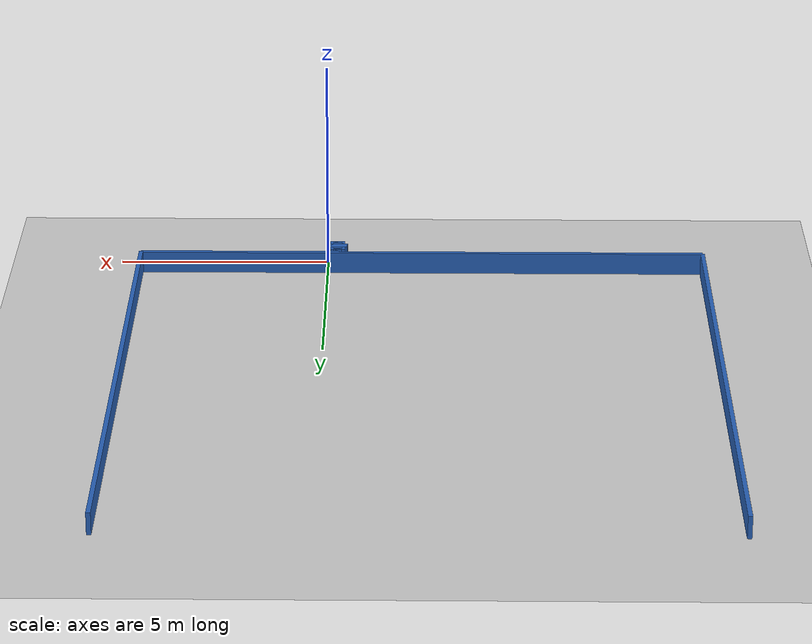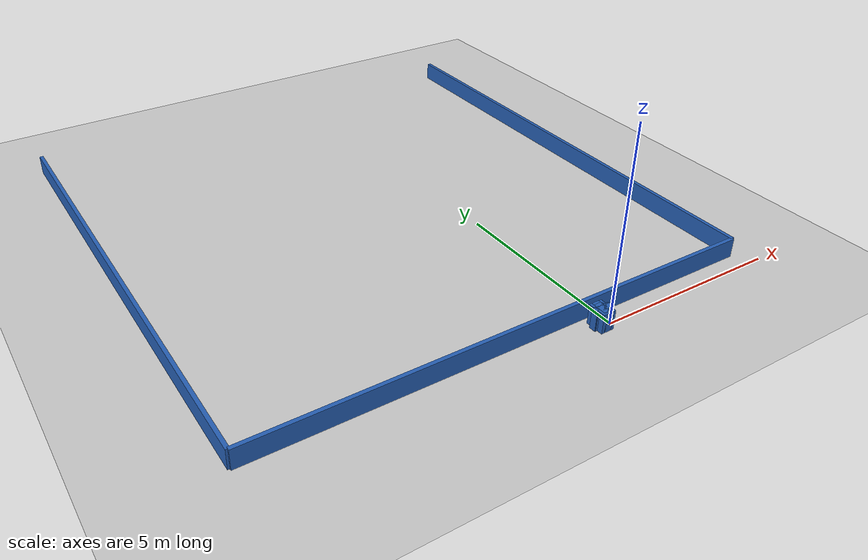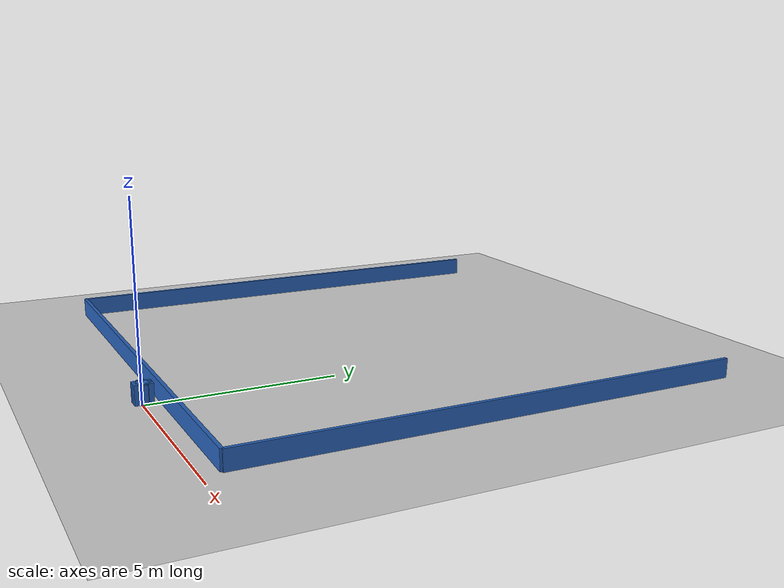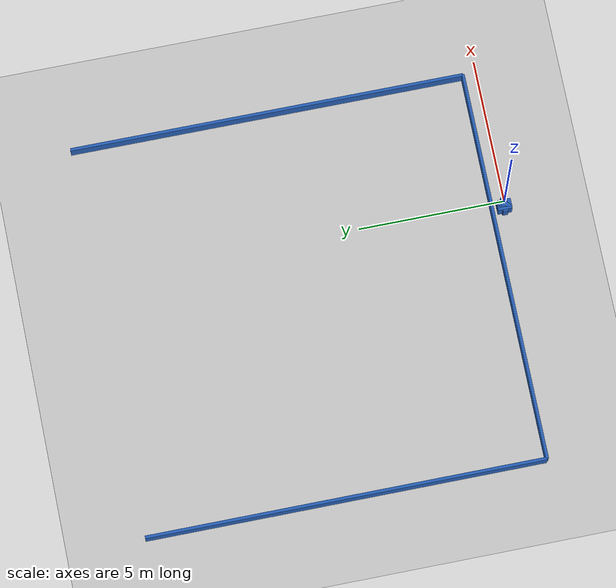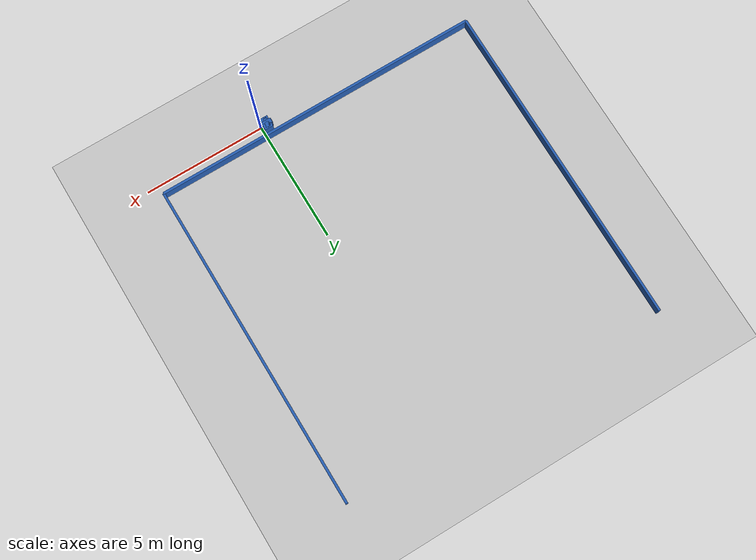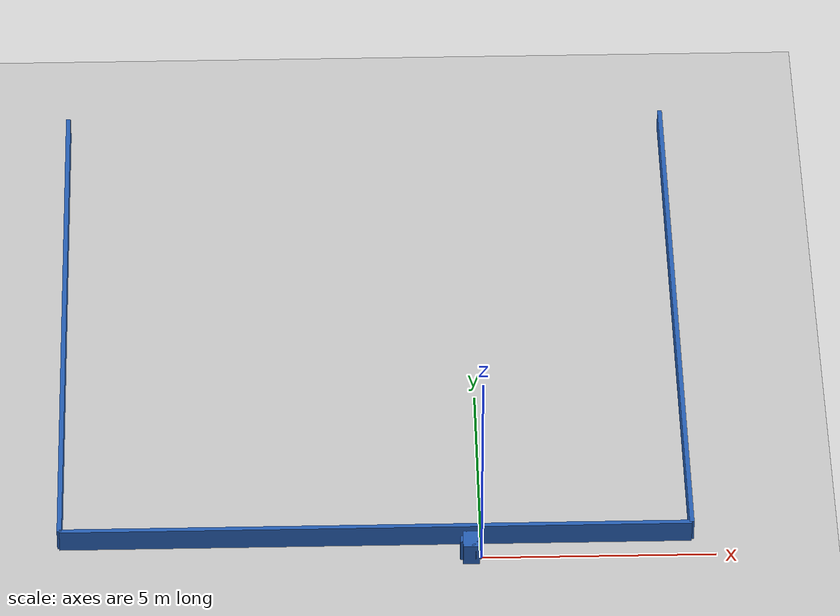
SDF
<?xml version="1.0" ?>
    <sdf version="1.5">
      <world name="default">
        <!-- A global light source -->
        <include>
          <uri>model://sun</uri>
        </include>
        <!-- A ground plane -->
        <include>
          <uri>model://ground_plane</uri>
        </include>

    <model name='libopen_space_final_T2B_112_28'>
      <static>1</static>
      <pose frame=''>-0.225000 0.075000 0.000000 0.000000 0.000000 0.000000</pose>
      <link name='link'>
        <inertial>
          <mass>1</mass>
          <inertia>
            <ixx>0.145833</ixx>
            <ixy>0</ixy>
            <ixz>0</ixz>
            <iyy>0.145833</iyy>
            <iyz>0</iyz>
            <izz>0.125</izz>
          </inertia>
        </inertial>
        <collision name='collision'>
          <geometry>
            <box>
              <size>0.21 0.35 1</size>
            </box>
          </geometry>
          <max_contacts>10</max_contacts>
          <surface>
            <contact>
              <ode/>
            </contact>
            <bounce/>
            <friction>
              <torsional>
                <ode/>
              </torsional>
              <ode/>
            </friction>
          </surface>
        </collision>
        <visual name='visual'>
          <geometry>
            <box>
              <size>0.21 0.35 1</size>
            </box>
          </geometry>
	    <material>
              <ambient>0.152000 0.379000 0.720000 1</ambient>
	      <diffuse>0.152000 0.379000 0.720000 1</diffuse>
          </material>
          <material>
            <script>
              <name>Gazebo/Grey</name>
              <uri>file://media/materials/scripts/gazebo.material</uri>
            </script>
          </material>
        </visual>
        <self_collide>0</self_collide>
        <kinematic>0</kinematic>
        <gravity>1</gravity>
      </link>
      <plugin name='libopen_space_final_T2B_112_28' filename='libopen_space_final_T2B_112_28.so'/>
    </model>

    <model name='libopen_space_final_T2B_147_27'>
      <static>1</static>
      <pose frame=''>-0.225000 0.075000 0.000000 0.000000 0.000000 0.000000</pose>
      <link name='link'>
        <inertial>
          <mass>1</mass>
          <inertia>
            <ixx>0.145833</ixx>
            <ixy>0</ixy>
            <ixz>0</ixz>
            <iyy>0.145833</iyy>
            <iyz>0</iyz>
            <izz>0.125</izz>
          </inertia>
        </inertial>
        <collision name='collision'>
          <geometry>
            <box>
              <size>0.20 0.48 1</size>
            </box>
          </geometry>
          <max_contacts>10</max_contacts>
          <surface>
            <contact>
              <ode/>
            </contact>
            <bounce/>
            <friction>
              <torsional>
                <ode/>
              </torsional>
              <ode/>
            </friction>
          </surface>
        </collision>
        <visual name='visual'>
          <geometry>
            <box>
              <size>0.20 0.48 1</size>
            </box>
          </geometry>
	    <material>
              <ambient>0.152000 0.379000 0.720000 1</ambient>
	      <diffuse>0.152000 0.379000 0.720000 1</diffuse>
          </material>
          <material>
            <script>
              <name>Gazebo/Grey</name>
              <uri>file://media/materials/scripts/gazebo.material</uri>
            </script>
          </material>
        </visual>
        <self_collide>0</self_collide>
        <kinematic>0</kinematic>
        <gravity>1</gravity>
      </link>
      <plugin name='libopen_space_final_T2B_147_27' filename='libopen_space_final_T2B_147_27.so'/>
    </model>

    <model name='libopen_space_final_T2B_83_61'>
      <static>1</static>
      <pose frame=''>-0.225000 0.075000 0.000000 0.000000 0.000000 0.000000</pose>
      <link name='link'>
        <inertial>
          <mass>1</mass>
          <inertia>
            <ixx>0.145833</ixx>
            <ixy>0</ixy>
            <ixz>0</ixz>
            <iyy>0.145833</iyy>
            <iyz>0</iyz>
            <izz>0.125</izz>
          </inertia>
        </inertial>
        <collision name='collision'>
          <geometry>
            <box>
              <size>0.16 0.39 1</size>
            </box>
          </geometry>
          <max_contacts>10</max_contacts>
          <surface>
            <contact>
              <ode/>
            </contact>
            <bounce/>
            <friction>
              <torsional>
                <ode/>
              </torsional>
              <ode/>
            </friction>
          </surface>
        </collision>
        <visual name='visual'>
          <geometry>
            <box>
              <size>0.16 0.39 1</size>
            </box>
          </geometry>
	    <material>
              <ambient>0.152000 0.379000 0.720000 1</ambient>
	      <diffuse>0.152000 0.379000 0.720000 1</diffuse>
          </material>
          <material>
            <script>
              <name>Gazebo/Grey</name>
              <uri>file://media/materials/scripts/gazebo.material</uri>
            </script>
          </material>
        </visual>
        <self_collide>0</self_collide>
        <kinematic>0</kinematic>
        <gravity>1</gravity>
      </link>
      <plugin name='libopen_space_final_T2B_83_61' filename='libopen_space_final_T2B_83_61.so'/>
    </model>

    <model name='libopen_space_final_T2B_83_66'>
      <static>1</static>
      <pose frame=''>-0.225000 0.075000 0.000000 0.000000 0.000000 0.000000</pose>
      <link name='link'>
        <inertial>
          <mass>1</mass>
          <inertia>
            <ixx>0.145833</ixx>
            <ixy>0</ixy>
            <ixz>0</ixz>
            <iyy>0.145833</iyy>
            <iyz>0</iyz>
            <izz>0.125</izz>
          </inertia>
        </inertial>
        <collision name='collision'>
          <geometry>
            <box>
              <size>0.45 0.19 1</size>
            </box>
          </geometry>
          <max_contacts>10</max_contacts>
          <surface>
            <contact>
              <ode/>
            </contact>
            <bounce/>
            <friction>
              <torsional>
                <ode/>
              </torsional>
              <ode/>
            </friction>
          </surface>
        </collision>
        <visual name='visual'>
          <geometry>
            <box>
              <size>0.45 0.19 1</size>
            </box>
          </geometry>
	    <material>
              <ambient>0.152000 0.379000 0.720000 1</ambient>
	      <diffuse>0.152000 0.379000 0.720000 1</diffuse>
          </material>
          <material>
            <script>
              <name>Gazebo/Grey</name>
              <uri>file://media/materials/scripts/gazebo.material</uri>
            </script>
          </material>
        </visual>
        <self_collide>0</self_collide>
        <kinematic>0</kinematic>
        <gravity>1</gravity>
      </link>
      <plugin name='libopen_space_final_T2B_83_66' filename='libopen_space_final_T2B_83_66.so'/>
    </model>

    <model name='libopen_space_final_T2B_111_12'>
      <static>1</static>
      <pose frame=''>-0.225000 0.075000 0.000000 0.000000 0.000000 0.000000</pose>
      <link name='link'>
        <inertial>
          <mass>1</mass>
          <inertia>
            <ixx>0.145833</ixx>
            <ixy>0</ixy>
            <ixz>0</ixz>
            <iyy>0.145833</iyy>
            <iyz>0</iyz>
            <izz>0.125</izz>
          </inertia>
        </inertial>
        <collision name='collision'>
          <geometry>
            <box>
              <size>0.35 0.48 1</size>
            </box>
          </geometry>
          <max_contacts>10</max_contacts>
          <surface>
            <contact>
              <ode/>
            </contact>
            <bounce/>
            <friction>
              <torsional>
                <ode/>
              </torsional>
              <ode/>
            </friction>
          </surface>
        </collision>
        <visual name='visual'>
          <geometry>
            <box>
              <size>0.35 0.48 1</size>
            </box>
          </geometry>
	    <material>
              <ambient>0.152000 0.379000 0.720000 1</ambient>
	      <diffuse>0.152000 0.379000 0.720000 1</diffuse>
          </material>
          <material>
            <script>
              <name>Gazebo/Grey</name>
              <uri>file://media/materials/scripts/gazebo.material</uri>
            </script>
          </material>
        </visual>
        <self_collide>0</self_collide>
        <kinematic>0</kinematic>
        <gravity>1</gravity>
      </link>
      <plugin name='libopen_space_final_T2B_111_12' filename='libopen_space_final_T2B_111_12.so'/>
    </model>

    <model name='libopen_space_final_T2B_81_68'>
      <static>1</static>
      <pose frame=''>-0.225000 0.075000 0.000000 0.000000 0.000000 0.000000</pose>
      <link name='link'>
        <inertial>
          <mass>1</mass>
          <inertia>
            <ixx>0.145833</ixx>
            <ixy>0</ixy>
            <ixz>0</ixz>
            <iyy>0.145833</iyy>
            <iyz>0</iyz>
            <izz>0.125</izz>
          </inertia>
        </inertial>
        <collision name='collision'>
          <geometry>
            <box>
              <size>0.45 0.20 1</size>
            </box>
          </geometry>
          <max_contacts>10</max_contacts>
          <surface>
            <contact>
              <ode/>
            </contact>
            <bounce/>
            <friction>
              <torsional>
                <ode/>
              </torsional>
              <ode/>
            </friction>
          </surface>
        </collision>
        <visual name='visual'>
          <geometry>
            <box>
              <size>0.45 0.20 1</size>
            </box>
          </geometry>
	    <material>
              <ambient>0.152000 0.379000 0.720000 1</ambient>
	      <diffuse>0.152000 0.379000 0.720000 1</diffuse>
          </material>
          <material>
            <script>
              <name>Gazebo/Grey</name>
              <uri>file://media/materials/scripts/gazebo.material</uri>
            </script>
          </material>
        </visual>
        <self_collide>0</self_collide>
        <kinematic>0</kinematic>
        <gravity>1</gravity>
      </link>
      <plugin name='libopen_space_final_T2B_81_68' filename='libopen_space_final_T2B_81_68.so'/>
    </model>

    <model name='libopen_space_final_T2B_84_5'>
      <static>1</static>
      <pose frame=''>-0.225000 0.075000 0.000000 0.000000 0.000000 0.000000</pose>
      <link name='link'>
        <inertial>
          <mass>1</mass>
          <inertia>
            <ixx>0.145833</ixx>
            <ixy>0</ixy>
            <ixz>0</ixz>
            <iyy>0.145833</iyy>
            <iyz>0</iyz>
            <izz>0.125</izz>
          </inertia>
        </inertial>
        <collision name='collision'>
          <geometry>
            <box>
              <size>0.48 0.17 1</size>
            </box>
          </geometry>
          <max_contacts>10</max_contacts>
          <surface>
            <contact>
              <ode/>
            </contact>
            <bounce/>
            <friction>
              <torsional>
                <ode/>
              </torsional>
              <ode/>
            </friction>
          </surface>
        </collision>
        <visual name='visual'>
          <geometry>
            <box>
              <size>0.48 0.17 1</size>
            </box>
          </geometry>
	    <material>
              <ambient>0.152000 0.379000 0.720000 1</ambient>
	      <diffuse>0.152000 0.379000 0.720000 1</diffuse>
          </material>
          <material>
            <script>
              <name>Gazebo/Grey</name>
              <uri>file://media/materials/scripts/gazebo.material</uri>
            </script>
          </material>
        </visual>
        <self_collide>0</self_collide>
        <kinematic>0</kinematic>
        <gravity>1</gravity>
      </link>
      <plugin name='libopen_space_final_T2B_84_5' filename='libopen_space_final_T2B_84_5.so'/>
    </model>

    <model name='libopen_space_final_T2B_103_35'>
      <static>1</static>
      <pose frame=''>-0.225000 0.075000 0.000000 0.000000 0.000000 0.000000</pose>
      <link name='link'>
        <inertial>
          <mass>1</mass>
          <inertia>
            <ixx>0.145833</ixx>
            <ixy>0</ixy>
            <ixz>0</ixz>
            <iyy>0.145833</iyy>
            <iyz>0</iyz>
            <izz>0.125</izz>
          </inertia>
        </inertial>
        <collision name='collision'>
          <geometry>
            <box>
              <size>0.25 0.28 1</size>
            </box>
          </geometry>
          <max_contacts>10</max_contacts>
          <surface>
            <contact>
              <ode/>
            </contact>
            <bounce/>
            <friction>
              <torsional>
                <ode/>
              </torsional>
              <ode/>
            </friction>
          </surface>
        </collision>
        <visual name='visual'>
          <geometry>
            <box>
              <size>0.25 0.28 1</size>
            </box>
          </geometry>
	    <material>
              <ambient>0.152000 0.379000 0.720000 1</ambient>
	      <diffuse>0.152000 0.379000 0.720000 1</diffuse>
          </material>
          <material>
            <script>
              <name>Gazebo/Grey</name>
              <uri>file://media/materials/scripts/gazebo.material</uri>
            </script>
          </material>
        </visual>
        <self_collide>0</self_collide>
        <kinematic>0</kinematic>
        <gravity>1</gravity>
      </link>
      <plugin name='libopen_space_final_T2B_103_35' filename='libopen_space_final_T2B_103_35.so'/>
    </model>

    <model name='libopen_space_final_T2B_134_25'>
      <static>1</static>
      <pose frame=''>-0.225000 0.075000 0.000000 0.000000 0.000000 0.000000</pose>
      <link name='link'>
        <inertial>
          <mass>1</mass>
          <inertia>
            <ixx>0.145833</ixx>
            <ixy>0</ixy>
            <ixz>0</ixz>
            <iyy>0.145833</iyy>
            <iyz>0</iyz>
            <izz>0.125</izz>
          </inertia>
        </inertial>
        <collision name='collision'>
          <geometry>
            <box>
              <size>0.30 0.15 1</size>
            </box>
          </geometry>
          <max_contacts>10</max_contacts>
          <surface>
            <contact>
              <ode/>
            </contact>
            <bounce/>
            <friction>
              <torsional>
                <ode/>
              </torsional>
              <ode/>
            </friction>
          </surface>
        </collision>
        <visual name='visual'>
          <geometry>
            <box>
              <size>0.30 0.15 1</size>
            </box>
          </geometry>
	    <material>
              <ambient>0.152000 0.379000 0.720000 1</ambient>
	      <diffuse>0.152000 0.379000 0.720000 1</diffuse>
          </material>
          <material>
            <script>
              <name>Gazebo/Grey</name>
              <uri>file://media/materials/scripts/gazebo.material</uri>
            </script>
          </material>
        </visual>
        <self_collide>0</self_collide>
        <kinematic>0</kinematic>
        <gravity>1</gravity>
      </link>
      <plugin name='libopen_space_final_T2B_134_25' filename='libopen_space_final_T2B_134_25.so'/>
    </model>

    <model name='libopen_space_final_T2B_94_31'>
      <static>1</static>
      <pose frame=''>-0.225000 0.075000 0.000000 0.000000 0.000000 0.000000</pose>
      <link name='link'>
        <inertial>
          <mass>1</mass>
          <inertia>
            <ixx>0.145833</ixx>
            <ixy>0</ixy>
            <ixz>0</ixz>
            <iyy>0.145833</iyy>
            <iyz>0</iyz>
            <izz>0.125</izz>
          </inertia>
        </inertial>
        <collision name='collision'>
          <geometry>
            <box>
              <size>0.42 0.17 1</size>
            </box>
          </geometry>
          <max_contacts>10</max_contacts>
          <surface>
            <contact>
              <ode/>
            </contact>
            <bounce/>
            <friction>
              <torsional>
                <ode/>
              </torsional>
              <ode/>
            </friction>
          </surface>
        </collision>
        <visual name='visual'>
          <geometry>
            <box>
              <size>0.42 0.17 1</size>
            </box>
          </geometry>
	    <material>
              <ambient>0.152000 0.379000 0.720000 1</ambient>
	      <diffuse>0.152000 0.379000 0.720000 1</diffuse>
          </material>
          <material>
            <script>
              <name>Gazebo/Grey</name>
              <uri>file://media/materials/scripts/gazebo.material</uri>
            </script>
          </material>
        </visual>
        <self_collide>0</self_collide>
        <kinematic>0</kinematic>
        <gravity>1</gravity>
      </link>
      <plugin name='libopen_space_final_T2B_94_31' filename='libopen_space_final_T2B_94_31.so'/>
    </model>

        <model name='bottom_wall'>
          <static>1</static>
          <pose frame=''>-2.25 0.5 0.000000 0.000000 0.000000 1.57079632</pose>
          <link name='link'>
            <inertial>
            <mass>1</mass>
            <inertia>
              <ixx>0.145833</ixx>
              <ixy>0</ixy>
              <ixz>0</ixz>
              <iyy>0.145833</iyy>
              <iyz>0</iyz>
              <izz>0.125</izz>
            </inertia>
            </inertial>
            <collision name='collision'>
            <geometry>
              <box>
              <size>0.1 13.5 1</size>
              </box>
            </geometry>
            <max_contacts>10</max_contacts>
            <surface>
              <contact>
              <ode/>
              </contact>
              <bounce/>
              <friction>
              <torsional>
                <ode/>
              </torsional>
              <ode/>
              </friction>
            </surface>
            </collision>
            <visual name='visual'>
            <geometry>
              <box>
              <size>0.1 13.5 1</size>
              </box>
            </geometry>
            <material>
              <ambient>0.152000 0.379000 0.720000 1</ambient>
            <diffuse>0.152000 0.379000 0.720000 1</diffuse>
            </material>
            <material>
              <script>
              <name>Gazebo/Grey</name>
              <uri>file://media/materials/scripts/gazebo.material</uri>
              </script>
            </material>
            </visual>
            <self_collide>0</self_collide>
            <kinematic>0</kinematic>
            <gravity>1</gravity>
          </link>
        </model>

        <model name='left_wall'>
          <static>1</static>
          <pose frame=''>-9 7.25 0.000000 0.000000 0.000000 0.000000</pose>
          <link name='link'>
            <inertial>
            <mass>1</mass>
            <inertia>
              <ixx>0.145833</ixx>
              <ixy>0</ixy>
              <ixz>0</ixz>
              <iyy>0.145833</iyy>
              <iyz>0</iyz>
              <izz>0.125</izz>
            </inertia>
            </inertial>
            <collision name='collision'>
            <geometry>
              <box>
              <size>0.1 13.5 1</size>
              </box>
            </geometry>
            <max_contacts>10</max_contacts>
            <surface>
              <contact>
              <ode/>
              </contact>
              <bounce/>
              <friction>
              <torsional>
                <ode/>
              </torsional>
              <ode/>
              </friction>
            </surface>
            </collision>
            <visual name='visual'>
            <geometry>
              <box>
              <size>0.1 13.5 1</size>
              </box>
            </geometry>
            <material>
              <ambient>0.152000 0.379000 0.720000 1</ambient>
            <diffuse>0.152000 0.379000 0.720000 1</diffuse>
            </material>
            <material>
              <script>
              <name>Gazebo/Grey</name>
              <uri>file://media/materials/scripts/gazebo.material</uri>
              </script>
            </material>
            </visual>
            <self_collide>0</self_collide>
            <kinematic>0</kinematic>
            <gravity>1</gravity>
          </link>
        </model>

        <model name='right_wall'>
          <static>1</static>
          <pose frame=''>4.5 7.25 0.000000 0.000000 0.000000 0.000000</pose>
          <link name='link'>
            <inertial>
            <mass>1</mass>
            <inertia>
              <ixx>0.145833</ixx>
              <ixy>0</ixy>
              <ixz>0</ixz>
              <iyy>0.145833</iyy>
              <iyz>0</iyz>
              <izz>0.125</izz>
            </inertia>
            </inertial>
            <collision name='collision'>
            <geometry>
              <box>
              <size>0.1 13.5 1</size>
              </box>
            </geometry>
            <max_contacts>10</max_contacts>
            <surface>
              <contact>
              <ode/>
              </contact>
              <bounce/>
              <friction>
              <torsional>
                <ode/>
              </torsional>
              <ode/>
              </friction>
            </surface>
            </collision>
            <visual name='visual'>
            <geometry>
              <box>
              <size>0.1 13.5 1</size>
              </box>
            </geometry>
            <material>
              <ambient>0.152000 0.379000 0.720000 1</ambient>
            <diffuse>0.152000 0.379000 0.720000 1</diffuse>
            </material>
            <material>
              <script>
              <name>Gazebo/Grey</name>
              <uri>file://media/materials/scripts/gazebo.material</uri>
              </script>
            </material>
            </visual>
            <self_collide>0</self_collide>
            <kinematic>0</kinematic>
            <gravity>1</gravity>
          </link>
        </model>

      </world>
    </sdf>"
